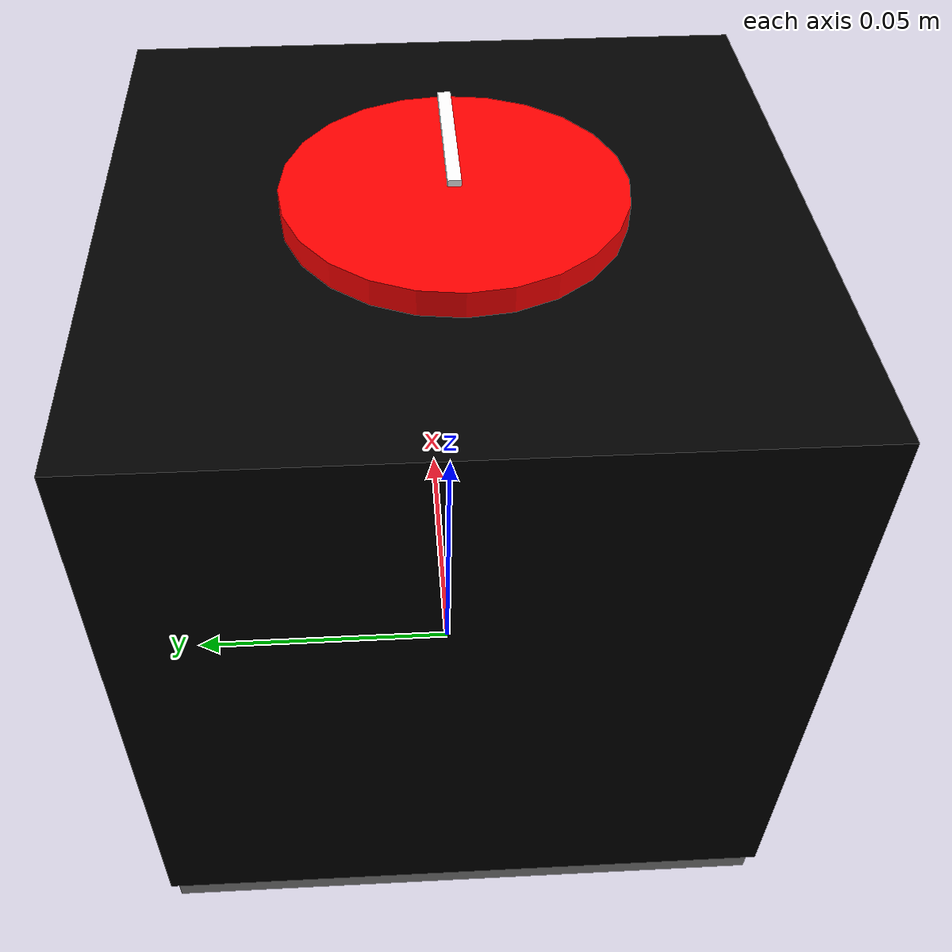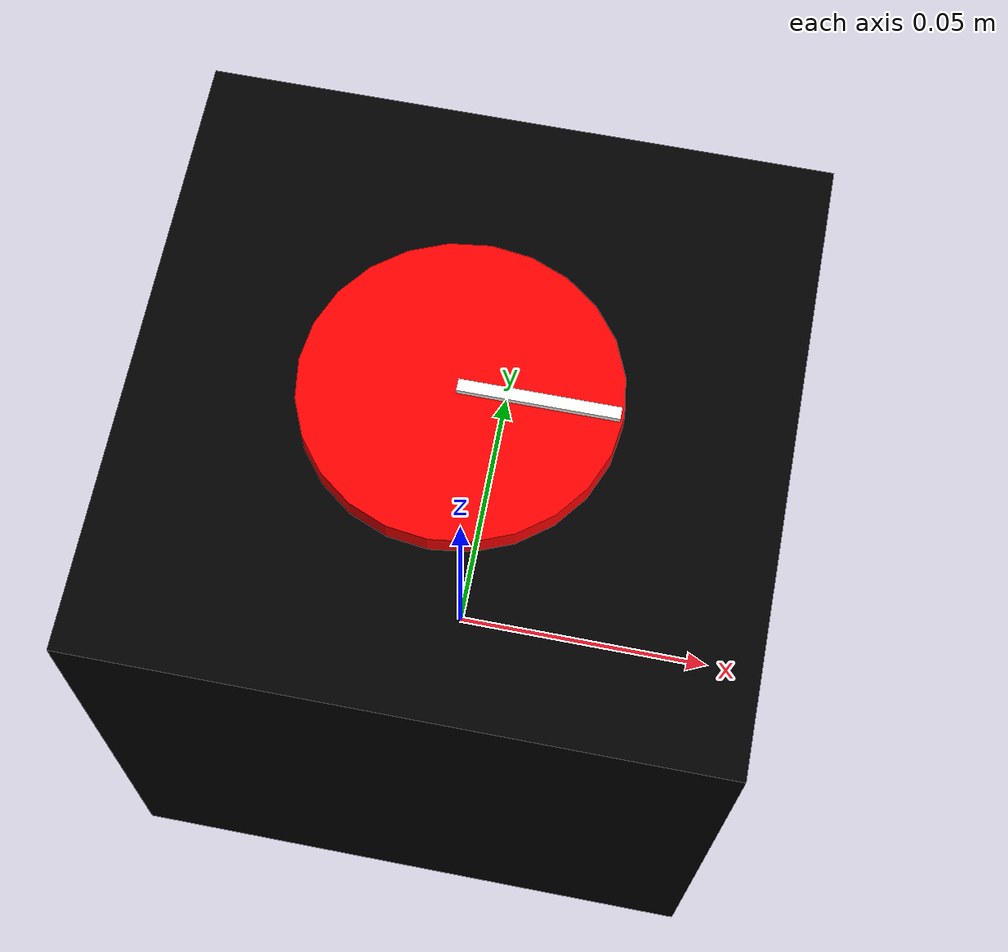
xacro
<?xml version="1.0"?>
<robot name="qube" xmlns:xacro="http://ros.org/wiki/xacro">

    <!-- Define properties for different aspects of the QUBE-->
    <xacro:property name="box_size" value="0.102"/>
    <xacro:property name="stator_height" value="0.051"/>
    <xacro:property name="rotor_radius" value="0.025"/>
    <xacro:property name="rotor_length" value="0.110"/>
    <xacro:property name="indicator_length" value="0.025"/>
    <xacro:property name="indicator_width" value="0.002"/>
    <xacro:property name="indicator_offset" value="0.012"/>
    <xacro:property name="indicator_height" value="0.055"/>

    <!-- Define world frame -->
    <link name="world"/>

    <!-- Include macro and driver file -->
    <xacro:include filename="$(find qube_description)/urdf/qube.macro.xacro"/>
    <xacro:include filename="$(find qube_driver)/ros2_control/qube_driver.ros2_control.xacro"/>

    <!-- Fixed base joint -->
    <joint name="base_joint" type="fixed">
        <parent link="world"/>
        <child link="base_link"/>
        <origin xyz="0 0 0" rpy="0 0 0"/>
    </joint>

    <!-- Define arguments -->
    <xacro:arg name="baud_rate" default="115200"/>
    <xacro:arg name="device" default="/dev/ttyACM0"/>
    <xacro:arg name="simulation" default="true"/>

    <!-- Call the macro -->
    <xacro:qube_model prefix=""/>

    <!-- Call the control macro, so that we can pass the arguments to control -->
    <xacro:qube_driver_ros2_control
        name="qube_driver"
        prefix=""
        baud_rate="$(arg baud_rate)"
        device="$(arg device)"
        simulation="$(arg simulation)"/>
</robot>

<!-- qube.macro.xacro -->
<robot xmlns:xacro="http://ros.org/wiki/xacro">

    <xacro:macro name="qube_model" params="prefix">

        <!-- Base link -->
        <link name="${prefix}base_link">
            <visual>
                <geometry>
                    <box size="0.1 0.1 0.01"/>
                </geometry>
                <material name="grey">
                    <color rgba="0.5 0.5 0.5 1.0"/>
                </material>
            </visual>
        </link>

        <!-- Stator link -->
        <link name="${prefix}stator_link">
            <visual>
                <geometry>
                    <box size="${box_size} ${box_size} ${box_size}"/>
                </geometry>
                <material name="black">
                    <color rgba="0.0 0.0 0.0 1.0"/>
                </material>
            </visual>
        </link>

        <!-- Rotor link -->
        <link name="${prefix}rotor_link">
            <visual>
                <geometry>
                    <cylinder radius="${rotor_radius}" length="${rotor_length}"/>
                </geometry>
                <material name="red">
                    <color rgba="1.0 0.0 0.0 1.0"/>
                </material>
            </visual>
        </link>

        <!-- Angle link -->
        <link name="${prefix}angle_link">
            <visual>
                <geometry>
                    <box size="${indicator_length} ${indicator_width} ${indicator_width}"/>
                </geometry>
                <material name="white">
                    <color rgba="1.0 1.0 1.0 1.0"/>
                </material>
            </visual>
        </link>

        <!-- Stator joint -->
        <joint name="${prefix}stator_joint" type="fixed">
            <parent link="${prefix}base_link"/>
            <child link="${prefix}stator_link"/>
            <origin xyz="0 0 ${stator_height}" rpy="0 0 0"/>
        </joint>

        <!-- Rotor joint (revolute) -->
        <joint name="${prefix}motor_joint" type="revolute">
            <parent link="${prefix}stator_link"/>
            <child link="${prefix}rotor_link"/>
            <origin xyz="0 0 0" rpy="0 0 0"/> <!-- Ensure correct transform -->
            <axis xyz="0 0 1"/>
            <limit effort="10.0" velocity="1.0" lower="-3.14" upper="3.14"/>
        </joint>

        <!-- Indicator joint (fixed) -->
        <joint name="${prefix}indicator" type="fixed">
            <parent link="${prefix}rotor_link"/>
            <child link="${prefix}angle_link"/>
            <origin xyz="${indicator_offset} 0 ${indicator_height}" rpy="0 0 0"/>
        </joint>

    </xacro:macro>

</robot>
